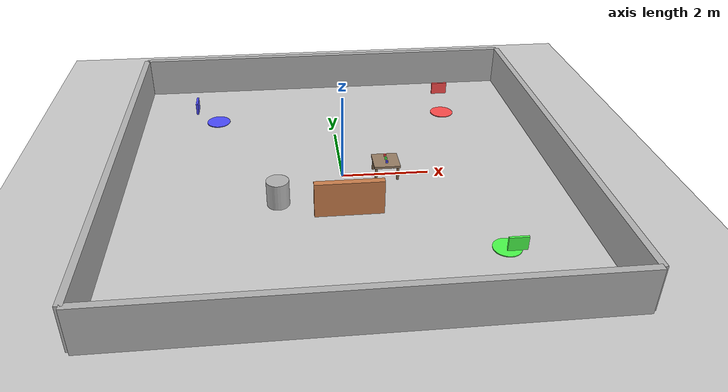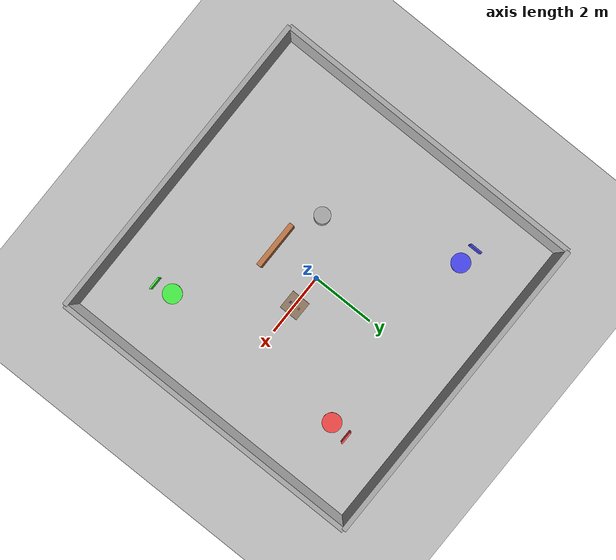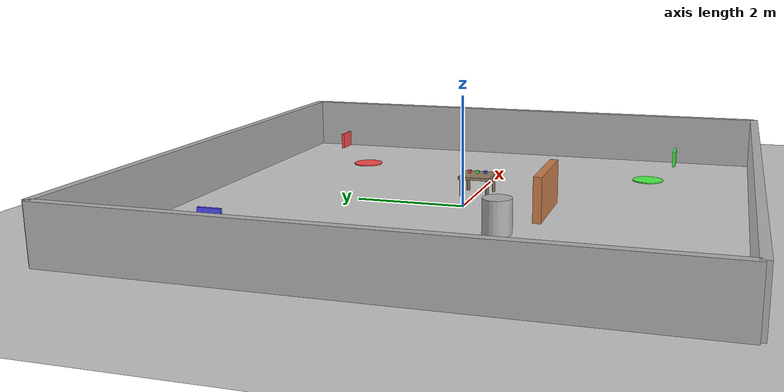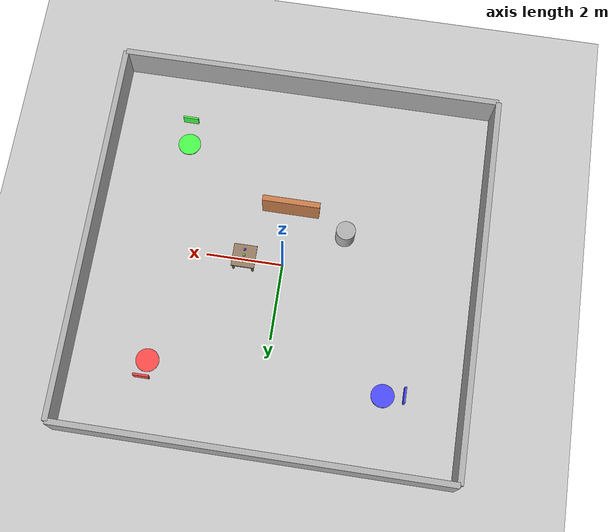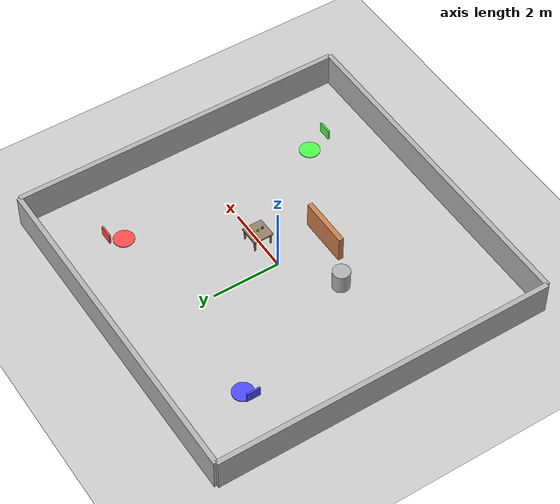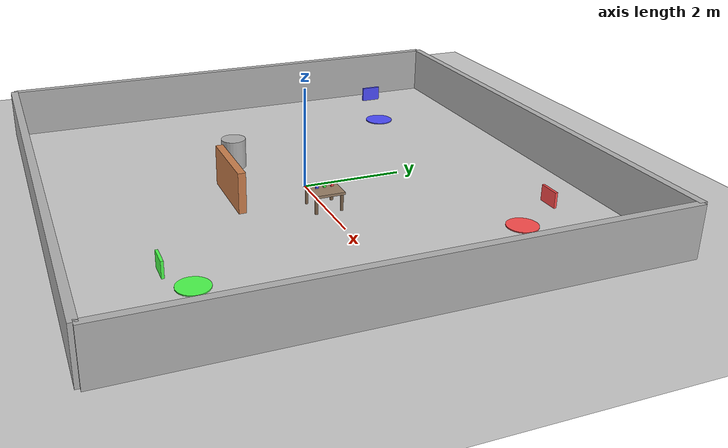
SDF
<?xml version="1.0"?>
<sdf version="1.6">
  <world name="qr_test_arena">

    <!-- Physics settings -->
    <physics type="ode">
      <real_time_update_rate>1000.0</real_time_update_rate>
      <max_step_size>0.001</max_step_size>
      <real_time_factor>1</real_time_factor>
    </physics>

    <!-- Lighting -->
    <include>
      <uri>model://sun</uri>
    </include>

    <!-- Ground plane -->
    <include>
      <uri>model://ground_plane</uri>
    </include>

    <!-- ==================== ARENA WALLS ==================== -->

    <!-- North Wall -->
    <model name="wall_north">
      <static>true</static>
      <pose>0 5 0.5 0 0 0</pose>
      <link name="link">
        <collision name="collision">
          <geometry>
            <box><size>10 0.15 1</size></box>
          </geometry>
        </collision>
        <visual name="visual">
          <geometry>
            <box><size>10 0.15 1</size></box>
          </geometry>
          <material>
            <ambient>0.5 0.5 0.5 1</ambient>
            <diffuse>0.7 0.7 0.7 1</diffuse>
          </material>
        </visual>
      </link>
    </model>

    <!-- South Wall -->
    <model name="wall_south">
      <static>true</static>
      <pose>0 -5 0.5 0 0 0</pose>
      <link name="link">
        <collision name="collision">
          <geometry>
            <box><size>10 0.15 1</size></box>
          </geometry>
        </collision>
        <visual name="visual">
          <geometry>
            <box><size>10 0.15 1</size></box>
          </geometry>
          <material>
            <ambient>0.5 0.5 0.5 1</ambient>
            <diffuse>0.7 0.7 0.7 1</diffuse>
          </material>
        </visual>
      </link>
    </model>

    <!-- East Wall -->
    <model name="wall_east">
      <static>true</static>
      <pose>5 0 0.5 0 0 0</pose>
      <link name="link">
        <collision name="collision">
          <geometry>
            <box><size>0.15 10 1</size></box>
          </geometry>
        </collision>
        <visual name="visual">
          <geometry>
            <box><size>0.15 10 1</size></box>
          </geometry>
          <material>
            <ambient>0.5 0.5 0.5 1</ambient>
            <diffuse>0.7 0.7 0.7 1</diffuse>
          </material>
        </visual>
      </link>
    </model>

    <!-- West Wall -->
    <model name="wall_west">
      <static>true</static>
      <pose>-5 0 0.5 0 0 0</pose>
      <link name="link">
        <collision name="collision">
          <geometry>
            <box><size>0.15 10 1</size></box>
          </geometry>
        </collision>
        <visual name="visual">
          <geometry>
            <box><size>0.15 10 1</size></box>
          </geometry>
          <material>
            <ambient>0.5 0.5 0.5 1</ambient>
            <diffuse>0.7 0.7 0.7 1</diffuse>
          </material>
        </visual>
      </link>
    </model>

    <!-- ==================== PICKUP STATION ==================== -->

    <!-- Pickup Table at origin -->
    <model name="pickup_table">
      <static>true</static>
      <pose>1.0 0 0.35 0 0 0</pose>
      <link name="link">
        <!-- Table top -->
        <collision name="table_top_collision">
          <pose>0 0 0 0 0 0</pose>
          <geometry>
            <box><size>0.6 0.6 0.05</size></box>
          </geometry>
        </collision>
        <visual name="table_top_visual">
          <pose>0 0 0 0 0 0</pose>
          <geometry>
            <box><size>0.6 0.6 0.05</size></box>
          </geometry>
          <material>
            <ambient>0.4 0.3 0.2 1</ambient>
            <diffuse>0.6 0.5 0.4 1</diffuse>
          </material>
        </visual>
        <!-- Table legs -->
        <collision name="leg1_collision">
          <pose>0.25 0.25 -0.175 0 0 0</pose>
          <geometry>
            <cylinder><radius>0.03</radius><length>0.35</length></cylinder>
          </geometry>
        </collision>
        <visual name="leg1_visual">
          <pose>0.25 0.25 -0.175 0 0 0</pose>
          <geometry>
            <cylinder><radius>0.03</radius><length>0.35</length></cylinder>
          </geometry>
          <material>
            <ambient>0.3 0.2 0.1 1</ambient>
            <diffuse>0.5 0.4 0.3 1</diffuse>
          </material>
        </visual>
        <collision name="leg2_collision">
          <pose>-0.25 0.25 -0.175 0 0 0</pose>
          <geometry>
            <cylinder><radius>0.03</radius><length>0.35</length></cylinder>
          </geometry>
        </collision>
        <visual name="leg2_visual">
          <pose>-0.25 0.25 -0.175 0 0 0</pose>
          <geometry>
            <cylinder><radius>0.03</radius><length>0.35</length></cylinder>
          </geometry>
          <material>
            <ambient>0.3 0.2 0.1 1</ambient>
            <diffuse>0.5 0.4 0.3 1</diffuse>
          </material>
        </visual>
        <collision name="leg3_collision">
          <pose>0.25 -0.25 -0.175 0 0 0</pose>
          <geometry>
            <cylinder><radius>0.03</radius><length>0.35</length></cylinder>
          </geometry>
        </collision>
        <visual name="leg3_visual">
          <pose>0.25 -0.25 -0.175 0 0 0</pose>
          <geometry>
            <cylinder><radius>0.03</radius><length>0.35</length></cylinder>
          </geometry>
          <material>
            <ambient>0.3 0.2 0.1 1</ambient>
            <diffuse>0.5 0.4 0.3 1</diffuse>
          </material>
        </visual>
        <collision name="leg4_collision">
          <pose>-0.25 -0.25 -0.175 0 0 0</pose>
          <geometry>
            <cylinder><radius>0.03</radius><length>0.35</length></cylinder>
          </geometry>
        </collision>
        <visual name="leg4_visual">
          <pose>-0.25 -0.25 -0.175 0 0 0</pose>
          <geometry>
            <cylinder><radius>0.03</radius><length>0.35</length></cylinder>
          </geometry>
          <material>
            <ambient>0.3 0.2 0.1 1</ambient>
            <diffuse>0.5 0.4 0.3 1</diffuse>
          </material>
        </visual>
      </link>
    </model>

    <!-- QR Cube for Station A (Red) -->
    <model name="qr_cube_station_a">
      <pose>1.0 0.15 0.425 0 0 0</pose>
      <link name="link">
        <inertial>
          <mass>0.1</mass>
          <inertia>
            <ixx>0.00004167</ixx>
            <iyy>0.00004167</iyy>
            <izz>0.00004167</izz>
          </inertia>
        </inertial>
        <collision name="collision">
          <geometry>
            <box><size>0.05 0.05 0.05</size></box>
          </geometry>
        </collision>
        <visual name="visual">
          <geometry>
            <box><size>0.05 0.05 0.05</size></box>
          </geometry>
          <material>
            <ambient>0.9 0.2 0.2 1</ambient>
            <diffuse>1.0 0.3 0.3 1</diffuse>
          </material>
        </visual>
      </link>
    </model>

    <!-- QR Cube for Station B (Green) -->
    <model name="qr_cube_station_b">
      <pose>1.0 0 0.425 0 0 0</pose>
      <link name="link">
        <inertial>
          <mass>0.1</mass>
          <inertia>
            <ixx>0.00004167</ixx>
            <iyy>0.00004167</iyy>
            <izz>0.00004167</izz>
          </inertia>
        </inertial>
        <collision name="collision">
          <geometry>
            <box><size>0.05 0.05 0.05</size></box>
          </geometry>
        </collision>
        <visual name="visual">
          <geometry>
            <box><size>0.05 0.05 0.05</size></box>
          </geometry>
          <material>
            <ambient>0.2 0.9 0.2 1</ambient>
            <diffuse>0.3 1.0 0.3 1</diffuse>
          </material>
        </visual>
      </link>
    </model>

    <!-- QR Cube for Station C (Blue) -->
    <model name="qr_cube_station_c">
      <pose>1.0 -0.15 0.425 0 0 0</pose>
      <link name="link">
        <inertial>
          <mass>0.1</mass>
          <inertia>
            <ixx>0.00004167</ixx>
            <iyy>0.00004167</iyy>
            <izz>0.00004167</izz>
          </inertia>
        </inertial>
        <collision name="collision">
          <geometry>
            <box><size>0.05 0.05 0.05</size></box>
          </geometry>
        </collision>
        <visual name="visual">
          <geometry>
            <box><size>0.05 0.05 0.05</size></box>
          </geometry>
          <material>
            <ambient>0.2 0.2 0.9 1</ambient>
            <diffuse>0.3 0.3 1.0 1</diffuse>
          </material>
        </visual>
      </link>
    </model>

    <!-- ==================== DELIVERY STATIONS ==================== -->

    <!-- Station A - Position (3, 3) - Red marker -->
    <model name="station_a_marker">
      <static>true</static>
      <pose>3 3 0.01 0 0 0</pose>
      <link name="link">
        <visual name="visual">
          <geometry>
            <cylinder><radius>0.3</radius><length>0.02</length></cylinder>
          </geometry>
          <material>
            <ambient>0.9 0.2 0.2 1</ambient>
            <diffuse>1.0 0.3 0.3 1</diffuse>
          </material>
        </visual>
      </link>
    </model>

    <model name="station_a_sign">
      <static>true</static>
      <pose>3 3.5 0.5 0 0 0</pose>
      <link name="link">
        <visual name="visual">
          <geometry>
            <box><size>0.4 0.05 0.3</size></box>
          </geometry>
          <material>
            <ambient>0.9 0.2 0.2 1</ambient>
            <diffuse>1.0 0.3 0.3 1</diffuse>
          </material>
        </visual>
      </link>
    </model>

    <!-- Station B - Position (3, -3) - Green marker -->
    <model name="station_b_marker">
      <static>true</static>
      <pose>3 -3 0.01 0 0 0</pose>
      <link name="link">
        <visual name="visual">
          <geometry>
            <cylinder><radius>0.3</radius><length>0.02</length></cylinder>
          </geometry>
          <material>
            <ambient>0.2 0.9 0.2 1</ambient>
            <diffuse>0.3 1.0 0.3 1</diffuse>
          </material>
        </visual>
      </link>
    </model>

    <model name="station_b_sign">
      <static>true</static>
      <pose>3 -3.5 0.5 0 0 0</pose>
      <link name="link">
        <visual name="visual">
          <geometry>
            <box><size>0.4 0.05 0.3</size></box>
          </geometry>
          <material>
            <ambient>0.2 0.9 0.2 1</ambient>
            <diffuse>0.3 1.0 0.3 1</diffuse>
          </material>
        </visual>
      </link>
    </model>

    <!-- Station C - Position (-3, 3) - Blue marker -->
    <model name="station_c_marker">
      <static>true</static>
      <pose>-3 3 0.01 0 0 0</pose>
      <link name="link">
        <visual name="visual">
          <geometry>
            <cylinder><radius>0.3</radius><length>0.02</length></cylinder>
          </geometry>
          <material>
            <ambient>0.2 0.2 0.9 1</ambient>
            <diffuse>0.3 0.3 1.0 1</diffuse>
          </material>
        </visual>
      </link>
    </model>

    <model name="station_c_sign">
      <static>true</static>
      <pose>-3.5 3 0.5 0 0 1.57</pose>
      <link name="link">
        <visual name="visual">
          <geometry>
            <box><size>0.4 0.05 0.3</size></box>
          </geometry>
          <material>
            <ambient>0.2 0.2 0.9 1</ambient>
            <diffuse>0.3 0.3 1.0 1</diffuse>
          </material>
        </visual>
      </link>
    </model>

    <!-- ==================== OBSTACLES ==================== -->

    <!-- Keep some obstacles for navigation testing -->

    <!-- Center wall obstacle (reduced size for navigation) -->
    <model name="obstacle_wall_center">
      <static>true</static>
      <pose>0 -1.5 0.4 0 0 0</pose>
      <link name="link">
        <collision name="collision">
          <geometry>
            <box><size>1.5 0.15 0.8</size></box>
          </geometry>
        </collision>
        <visual name="visual">
          <geometry>
            <box><size>1.5 0.15 0.8</size></box>
          </geometry>
          <material>
            <ambient>0.6 0.4 0.2 1</ambient>
            <diffuse>0.8 0.5 0.3 1</diffuse>
          </material>
        </visual>
      </link>
    </model>

    <!-- Cylinder obstacle -->
    <model name="obstacle_cylinder">
      <static>true</static>
      <pose>-1.5 -1 0.3 0 0 0</pose>
      <link name="link">
        <collision name="collision">
          <geometry>
            <cylinder><radius>0.25</radius><length>0.6</length></cylinder>
          </geometry>
        </collision>
        <visual name="visual">
          <geometry>
            <cylinder><radius>0.25</radius><length>0.6</length></cylinder>
          </geometry>
          <material>
            <ambient>0.5 0.5 0.5 1</ambient>
            <diffuse>0.7 0.7 0.7 1</diffuse>
          </material>
        </visual>
      </link>
    </model>

  </world>
</sdf>
